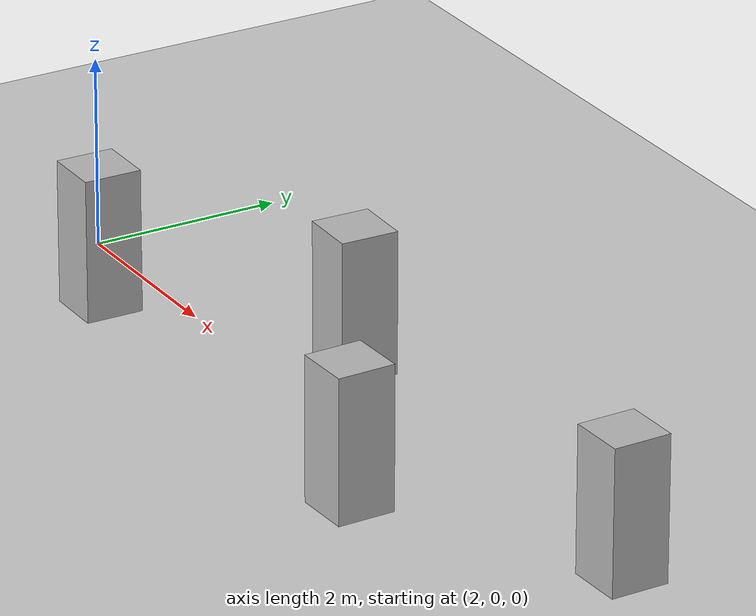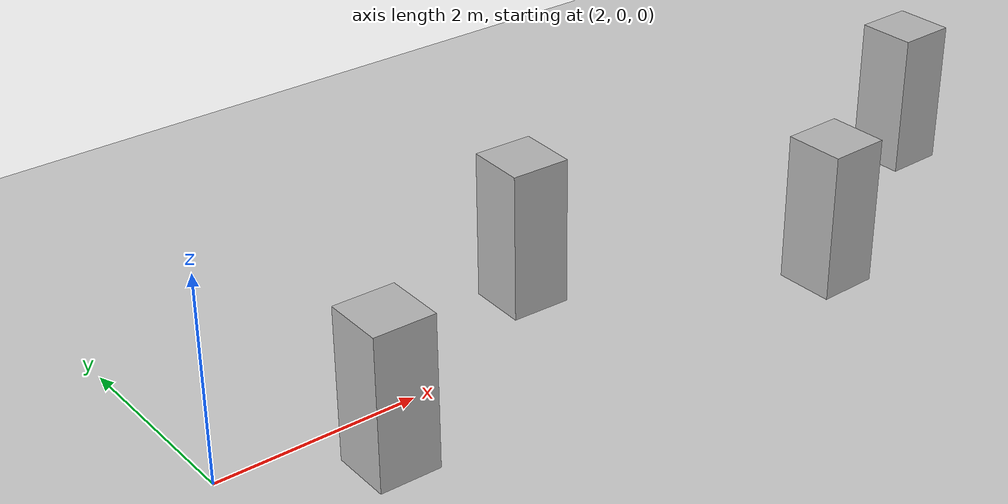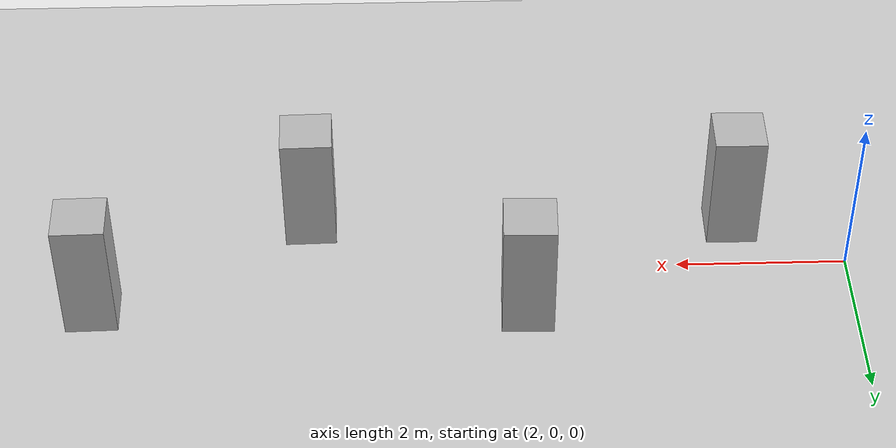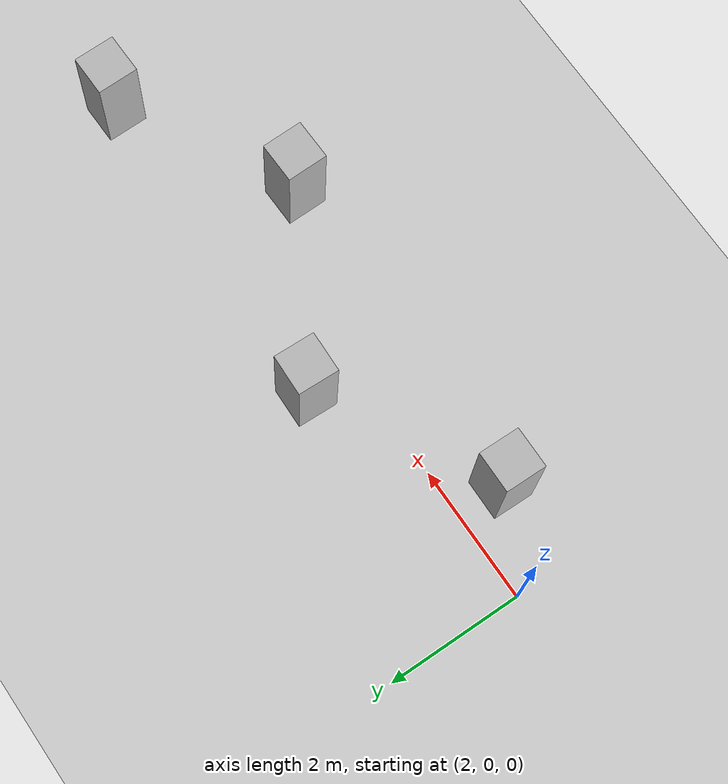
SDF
<?xml version="1.0"?>
<sdf version="1.6">
  <world name="v2-04g-r4-static-s5069">
    <gravity>0 0 -9.81</gravity>
    <physics name="v2_deterministic" type="ode">
      <max_step_size>0.002</max_step_size>
      <real_time_update_rate>500</real_time_update_rate>
    </physics>
    <include>
      <uri>model://sun</uri>
    </include>
    <include>
      <uri>model://ground_plane</uri>
    </include>
    <model name="pillar-1">
      <static>true</static>
      <pose>3.298606423 -0.672129957 0.750000000 0 0 -0.011849292</pose>
      <link name="link">
        <collision name="collision">
          <geometry>
            <box>
              <size>0.600000 0.600000 1.500000</size>
            </box>
          </geometry>
        </collision>
        <visual name="visual">
          <geometry>
            <box>
              <size>0.600000 0.600000 1.500000</size>
            </box>
          </geometry>
        </visual>
      </link>
    </model>
    <model name="pillar-2">
      <static>true</static>
      <pose>5.789323670 0.750995924 0.750000000 0 0 -0.028899498</pose>
      <link name="link">
        <collision name="collision">
          <geometry>
            <box>
              <size>0.600000 0.600000 1.500000</size>
            </box>
          </geometry>
        </collision>
        <visual name="visual">
          <geometry>
            <box>
              <size>0.600000 0.600000 1.500000</size>
            </box>
          </geometry>
        </visual>
      </link>
    </model>
    <model name="pillar-3">
      <static>true</static>
      <pose>8.313852224 -0.778990879 0.750000000 0 0 0.023346775</pose>
      <link name="link">
        <collision name="collision">
          <geometry>
            <box>
              <size>0.600000 0.600000 1.500000</size>
            </box>
          </geometry>
        </collision>
        <visual name="visual">
          <geometry>
            <box>
              <size>0.600000 0.600000 1.500000</size>
            </box>
          </geometry>
        </visual>
      </link>
    </model>
    <model name="pillar-4">
      <static>true</static>
      <pose>10.792034963 0.611781879 0.750000000 0 0 0.021761031</pose>
      <link name="link">
        <collision name="collision">
          <geometry>
            <box>
              <size>0.600000 0.600000 1.500000</size>
            </box>
          </geometry>
        </collision>
        <visual name="visual">
          <geometry>
            <box>
              <size>0.600000 0.600000 1.500000</size>
            </box>
          </geometry>
        </visual>
      </link>
    </model>
  </world>
</sdf>
